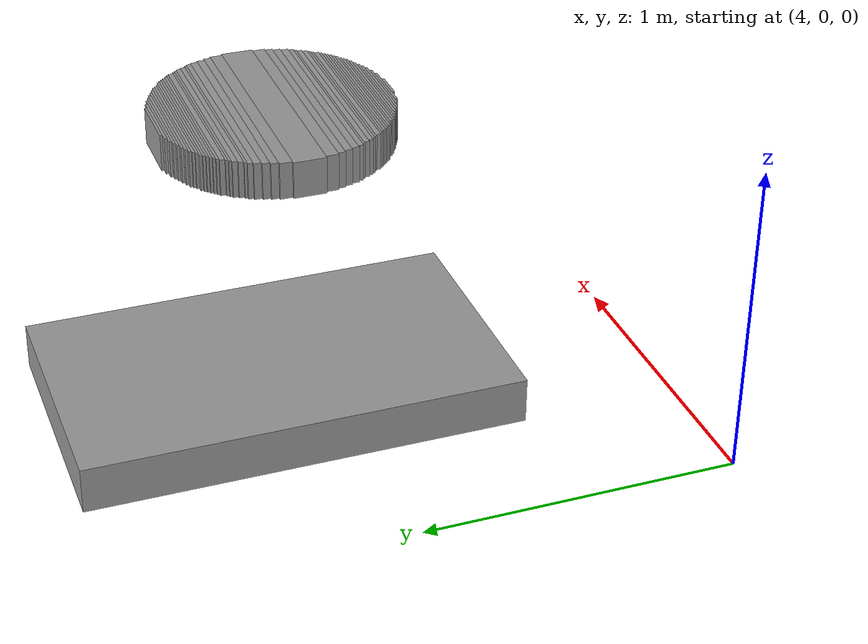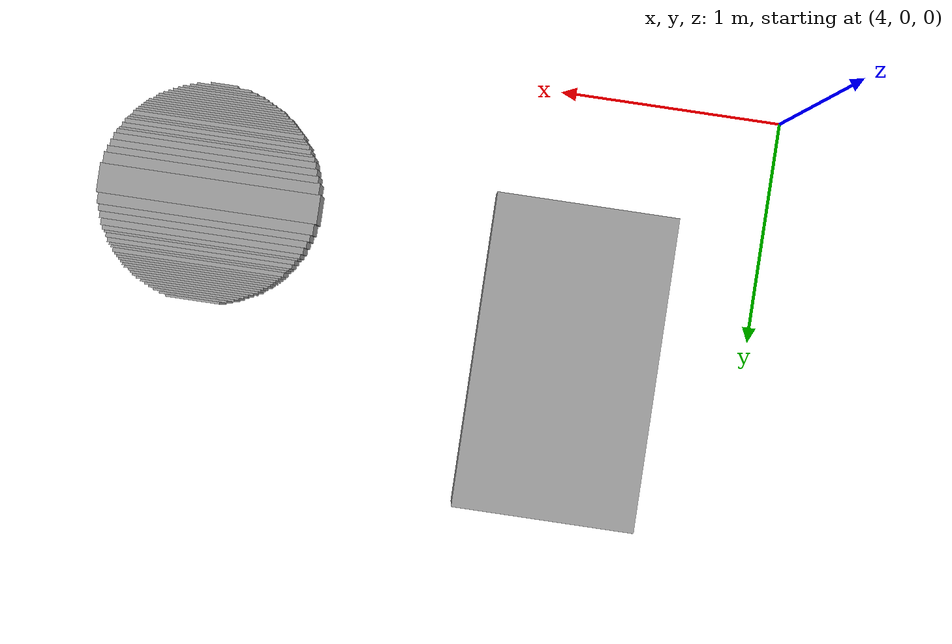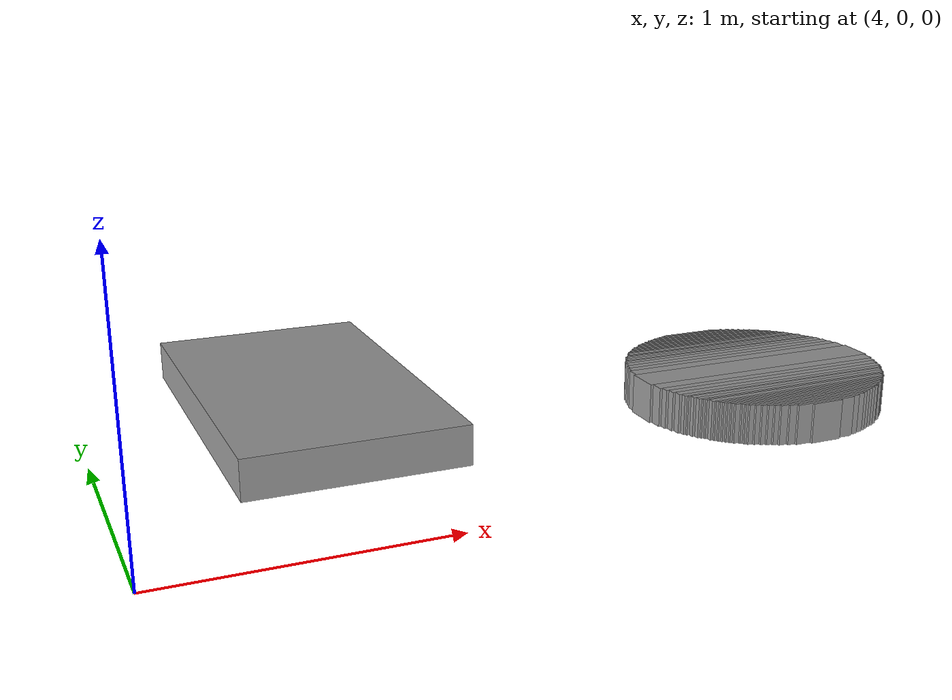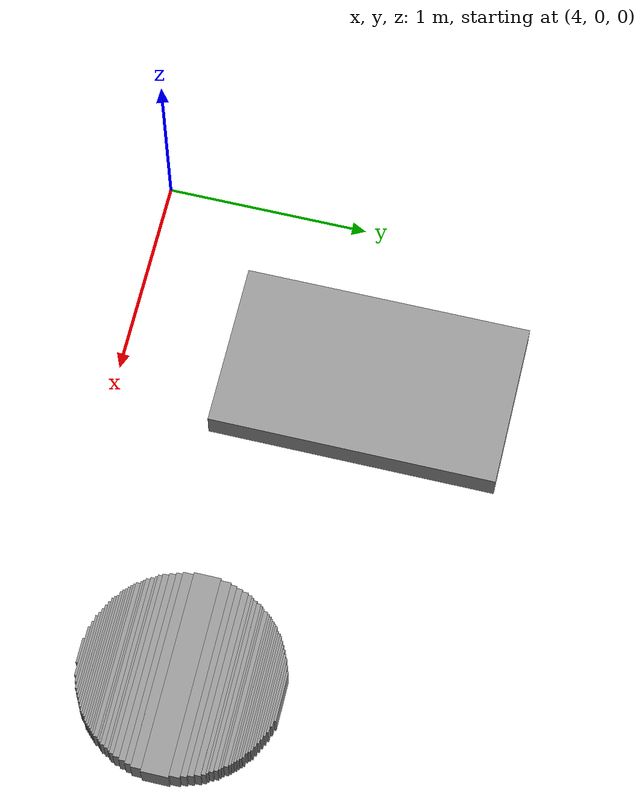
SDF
<sdf version="1.6">
 <model name="new_model">
  <link name="wall1">
   <collision name="wall1_collision">
    <geometry><box><size>0.121250 0.011250 0.150000</size></box></geometry>
    <pose>6.485000 0.220000 0.075000 0 0 0</pose>
   </collision>
   <visual name="Wall_1_Visual">
    <pose>6.485000 0.220000 0.075000 0 0 0</pose>
    <geometry><box><size>0.121250 0.011250 0.150000</size></box></geometry>
    <material>
     <script><uri>file://media/materials/scripts/gazebo.material</uri><name>Gazebo/Grey</name></script>
     <ambient>1 1 1 1</ambient>
    </material>
    <meta><layer>0</layer></meta>
   </visual>
  </link>
  <static>1</static>
  <link name="wall2">
   <collision name="wall2_collision">
    <geometry><box><size>0.241250 0.011250 0.150000</size></box></geometry>
    <pose>6.485000 0.230000 0.075000 0 0 0</pose>
   </collision>
   <visual name="Wall_2_Visual">
    <pose>6.485000 0.230000 0.075000 0 0 0</pose>
    <geometry><box><size>0.241250 0.011250 0.150000</size></box></geometry>
    <material>
     <script><uri>file://media/materials/scripts/gazebo.material</uri><name>Gazebo/Grey</name></script>
     <ambient>1 1 1 1</ambient>
    </material>
    <meta><layer>0</layer></meta>
   </visual>
  </link>
  <static>1</static>
  <link name="wall3">
   <collision name="wall3_collision">
    <geometry><box><size>0.301250 0.011250 0.150000</size></box></geometry>
    <pose>6.485000 0.240000 0.075000 0 0 0</pose>
   </collision>
   <visual name="Wall_3_Visual">
    <pose>6.485000 0.240000 0.075000 0 0 0</pose>
    <geometry><box><size>0.301250 0.011250 0.150000</size></box></geometry>
    <material>
     <script><uri>file://media/materials/scripts/gazebo.material</uri><name>Gazebo/Grey</name></script>
     <ambient>1 1 1 1</ambient>
    </material>
    <meta><layer>0</layer></meta>
   </visual>
  </link>
  <static>1</static>
  <link name="wall4">
   <collision name="wall4_collision">
    <geometry><box><size>0.361250 0.011250 0.150000</size></box></geometry>
    <pose>6.485000 0.250000 0.075000 0 0 0</pose>
   </collision>
   <visual name="Wall_4_Visual">
    <pose>6.485000 0.250000 0.075000 0 0 0</pose>
    <geometry><box><size>0.361250 0.011250 0.150000</size></box></geometry>
    <material>
     <script><uri>file://media/materials/scripts/gazebo.material</uri><name>Gazebo/Grey</name></script>
     <ambient>1 1 1 1</ambient>
    </material>
    <meta><layer>0</layer></meta>
   </visual>
  </link>
  <static>1</static>
  <link name="wall5">
   <collision name="wall5_collision">
    <geometry><box><size>0.401250 0.011250 0.150000</size></box></geometry>
    <pose>6.485000 0.260000 0.075000 0 0 0</pose>
   </collision>
   <visual name="Wall_5_Visual">
    <pose>6.485000 0.260000 0.075000 0 0 0</pose>
    <geometry><box><size>0.401250 0.011250 0.150000</size></box></geometry>
    <material>
     <script><uri>file://media/materials/scripts/gazebo.material</uri><name>Gazebo/Grey</name></script>
     <ambient>1 1 1 1</ambient>
    </material>
    <meta><layer>0</layer></meta>
   </visual>
  </link>
  <static>1</static>
  <link name="wall6">
   <collision name="wall6_collision">
    <geometry><box><size>0.441250 0.011250 0.150000</size></box></geometry>
    <pose>6.485000 0.270000 0.075000 0 0 0</pose>
   </collision>
   <visual name="Wall_6_Visual">
    <pose>6.485000 0.270000 0.075000 0 0 0</pose>
    <geometry><box><size>0.441250 0.011250 0.150000</size></box></geometry>
    <material>
     <script><uri>file://media/materials/scripts/gazebo.material</uri><name>Gazebo/Grey</name></script>
     <ambient>1 1 1 1</ambient>
    </material>
    <meta><layer>0</layer></meta>
   </visual>
  </link>
  <static>1</static>
  <link name="wall7">
   <collision name="wall7_collision">
    <geometry><box><size>0.481250 0.011250 0.150000</size></box></geometry>
    <pose>6.485000 0.280000 0.075000 0 0 0</pose>
   </collision>
   <visual name="Wall_7_Visual">
    <pose>6.485000 0.280000 0.075000 0 0 0</pose>
    <geometry><box><size>0.481250 0.011250 0.150000</size></box></geometry>
    <material>
     <script><uri>file://media/materials/scripts/gazebo.material</uri><name>Gazebo/Grey</name></script>
     <ambient>1 1 1 1</ambient>
    </material>
    <meta><layer>0</layer></meta>
   </visual>
  </link>
  <static>1</static>
  <link name="wall8">
   <collision name="wall8_collision">
    <geometry><box><size>0.521250 0.011250 0.150000</size></box></geometry>
    <pose>6.485000 0.290000 0.075000 0 0 0</pose>
   </collision>
   <visual name="Wall_8_Visual">
    <pose>6.485000 0.290000 0.075000 0 0 0</pose>
    <geometry><box><size>0.521250 0.011250 0.150000</size></box></geometry>
    <material>
     <script><uri>file://media/materials/scripts/gazebo.material</uri><name>Gazebo/Grey</name></script>
     <ambient>1 1 1 1</ambient>
    </material>
    <meta><layer>0</layer></meta>
   </visual>
  </link>
  <static>1</static>
  <link name="wall9">
   <collision name="wall9_collision">
    <geometry><box><size>0.561250 0.011250 0.150000</size></box></geometry>
    <pose>6.485000 0.300000 0.075000 0 0 0</pose>
   </collision>
   <visual name="Wall_9_Visual">
    <pose>6.485000 0.300000 0.075000 0 0 0</pose>
    <geometry><box><size>0.561250 0.011250 0.150000</size></box></geometry>
    <material>
     <script><uri>file://media/materials/scripts/gazebo.material</uri><name>Gazebo/Grey</name></script>
     <ambient>1 1 1 1</ambient>
    </material>
    <meta><layer>0</layer></meta>
   </visual>
  </link>
  <static>1</static>
  <link name="wall10">
   <collision name="wall10_collision">
    <geometry><box><size>0.581250 0.011250 0.150000</size></box></geometry>
    <pose>6.485000 0.310000 0.075000 0 0 0</pose>
   </collision>
   <visual name="Wall_10_Visual">
    <pose>6.485000 0.310000 0.075000 0 0 0</pose>
    <geometry><box><size>0.581250 0.011250 0.150000</size></box></geometry>
    <material>
     <script><uri>file://media/materials/scripts/gazebo.material</uri><name>Gazebo/Grey</name></script>
     <ambient>1 1 1 1</ambient>
    </material>
    <meta><layer>0</layer></meta>
   </visual>
  </link>
  <static>1</static>
  <link name="wall11">
   <collision name="wall11_collision">
    <geometry><box><size>0.601250 0.011250 0.150000</size></box></geometry>
    <pose>6.485000 0.320000 0.075000 0 0 0</pose>
   </collision>
   <visual name="Wall_11_Visual">
    <pose>6.485000 0.320000 0.075000 0 0 0</pose>
    <geometry><box><size>0.601250 0.011250 0.150000</size></box></geometry>
    <material>
     <script><uri>file://media/materials/scripts/gazebo.material</uri><name>Gazebo/Grey</name></script>
     <ambient>1 1 1 1</ambient>
    </material>
    <meta><layer>0</layer></meta>
   </visual>
  </link>
  <static>1</static>
  <link name="wall12">
   <collision name="wall12_collision">
    <geometry><box><size>0.641250 0.011250 0.150000</size></box></geometry>
    <pose>6.485000 0.330000 0.075000 0 0 0</pose>
   </collision>
   <visual name="Wall_12_Visual">
    <pose>6.485000 0.330000 0.075000 0 0 0</pose>
    <geometry><box><size>0.641250 0.011250 0.150000</size></box></geometry>
    <material>
     <script><uri>file://media/materials/scripts/gazebo.material</uri><name>Gazebo/Grey</name></script>
     <ambient>1 1 1 1</ambient>
    </material>
    <meta><layer>0</layer></meta>
   </visual>
  </link>
  <static>1</static>
  <link name="wall13">
   <collision name="wall13_collision">
    <geometry><box><size>0.661250 0.011250 0.150000</size></box></geometry>
    <pose>6.485000 0.340000 0.075000 0 0 0</pose>
   </collision>
   <visual name="Wall_13_Visual">
    <pose>6.485000 0.340000 0.075000 0 0 0</pose>
    <geometry><box><size>0.661250 0.011250 0.150000</size></box></geometry>
    <material>
     <script><uri>file://media/materials/scripts/gazebo.material</uri><name>Gazebo/Grey</name></script>
     <ambient>1 1 1 1</ambient>
    </material>
    <meta><layer>0</layer></meta>
   </visual>
  </link>
  <static>1</static>
  <link name="wall14">
   <collision name="wall14_collision">
    <geometry><box><size>0.681250 0.011250 0.150000</size></box></geometry>
    <pose>6.485000 0.350000 0.075000 0 0 0</pose>
   </collision>
   <visual name="Wall_14_Visual">
    <pose>6.485000 0.350000 0.075000 0 0 0</pose>
    <geometry><box><size>0.681250 0.011250 0.150000</size></box></geometry>
    <material>
     <script><uri>file://media/materials/scripts/gazebo.material</uri><name>Gazebo/Grey</name></script>
     <ambient>1 1 1 1</ambient>
    </material>
    <meta><layer>0</layer></meta>
   </visual>
  </link>
  <static>1</static>
  <link name="wall15">
   <collision name="wall15_collision">
    <geometry><box><size>0.701250 0.011250 0.150000</size></box></geometry>
    <pose>6.485000 0.360000 0.075000 0 0 0</pose>
   </collision>
   <visual name="Wall_15_Visual">
    <pose>6.485000 0.360000 0.075000 0 0 0</pose>
    <geometry><box><size>0.701250 0.011250 0.150000</size></box></geometry>
    <material>
     <script><uri>file://media/materials/scripts/gazebo.material</uri><name>Gazebo/Grey</name></script>
     <ambient>1 1 1 1</ambient>
    </material>
    <meta><layer>0</layer></meta>
   </visual>
  </link>
  <static>1</static>
  <link name="wall16">
   <collision name="wall16_collision">
    <geometry><box><size>0.721250 0.011250 0.150000</size></box></geometry>
    <pose>6.485000 0.370000 0.075000 0 0 0</pose>
   </collision>
   <visual name="Wall_16_Visual">
    <pose>6.485000 0.370000 0.075000 0 0 0</pose>
    <geometry><box><size>0.721250 0.011250 0.150000</size></box></geometry>
    <material>
     <script><uri>file://media/materials/scripts/gazebo.material</uri><name>Gazebo/Grey</name></script>
     <ambient>1 1 1 1</ambient>
    </material>
    <meta><layer>0</layer></meta>
   </visual>
  </link>
  <static>1</static>
  <link name="wall17">
   <collision name="wall17_collision">
    <geometry><box><size>0.741250 0.011250 0.150000</size></box></geometry>
    <pose>6.485000 0.380000 0.075000 0 0 0</pose>
   </collision>
   <visual name="Wall_17_Visual">
    <pose>6.485000 0.380000 0.075000 0 0 0</pose>
    <geometry><box><size>0.741250 0.011250 0.150000</size></box></geometry>
    <material>
     <script><uri>file://media/materials/scripts/gazebo.material</uri><name>Gazebo/Grey</name></script>
     <ambient>1 1 1 1</ambient>
    </material>
    <meta><layer>0</layer></meta>
   </visual>
  </link>
  <static>1</static>
  <link name="wall18">
   <collision name="wall18_collision">
    <geometry><box><size>0.761250 0.021250 0.150000</size></box></geometry>
    <pose>6.485000 0.395000 0.075000 0 0 0</pose>
   </collision>
   <visual name="Wall_18_Visual">
    <pose>6.485000 0.395000 0.075000 0 0 0</pose>
    <geometry><box><size>0.761250 0.021250 0.150000</size></box></geometry>
    <material>
     <script><uri>file://media/materials/scripts/gazebo.material</uri><name>Gazebo/Grey</name></script>
     <ambient>1 1 1 1</ambient>
    </material>
    <meta><layer>0</layer></meta>
   </visual>
  </link>
  <static>1</static>
  <link name="wall19">
   <collision name="wall19_collision">
    <geometry><box><size>0.781250 0.011250 0.150000</size></box></geometry>
    <pose>6.485000 0.410000 0.075000 0 0 0</pose>
   </collision>
   <visual name="Wall_19_Visual">
    <pose>6.485000 0.410000 0.075000 0 0 0</pose>
    <geometry><box><size>0.781250 0.011250 0.150000</size></box></geometry>
    <material>
     <script><uri>file://media/materials/scripts/gazebo.material</uri><name>Gazebo/Grey</name></script>
     <ambient>1 1 1 1</ambient>
    </material>
    <meta><layer>0</layer></meta>
   </visual>
  </link>
  <static>1</static>
  <link name="wall20">
   <collision name="wall20_collision">
    <geometry><box><size>0.801250 0.011250 0.150000</size></box></geometry>
    <pose>6.485000 0.420000 0.075000 0 0 0</pose>
   </collision>
   <visual name="Wall_20_Visual">
    <pose>6.485000 0.420000 0.075000 0 0 0</pose>
    <geometry><box><size>0.801250 0.011250 0.150000</size></box></geometry>
    <material>
     <script><uri>file://media/materials/scripts/gazebo.material</uri><name>Gazebo/Grey</name></script>
     <ambient>1 1 1 1</ambient>
    </material>
    <meta><layer>0</layer></meta>
   </visual>
  </link>
  <static>1</static>
  <link name="wall21">
   <collision name="wall21_collision">
    <geometry><box><size>0.821250 0.021250 0.150000</size></box></geometry>
    <pose>6.485000 0.435000 0.075000 0 0 0</pose>
   </collision>
   <visual name="Wall_21_Visual">
    <pose>6.485000 0.435000 0.075000 0 0 0</pose>
    <geometry><box><size>0.821250 0.021250 0.150000</size></box></geometry>
    <material>
     <script><uri>file://media/materials/scripts/gazebo.material</uri><name>Gazebo/Grey</name></script>
     <ambient>1 1 1 1</ambient>
    </material>
    <meta><layer>0</layer></meta>
   </visual>
  </link>
  <static>1</static>
  <link name="wall22">
   <collision name="wall22_collision">
    <geometry><box><size>0.841250 0.021250 0.150000</size></box></geometry>
    <pose>6.485000 0.455000 0.075000 0 0 0</pose>
   </collision>
   <visual name="Wall_22_Visual">
    <pose>6.485000 0.455000 0.075000 0 0 0</pose>
    <geometry><box><size>0.841250 0.021250 0.150000</size></box></geometry>
    <material>
     <script><uri>file://media/materials/scripts/gazebo.material</uri><name>Gazebo/Grey</name></script>
     <ambient>1 1 1 1</ambient>
    </material>
    <meta><layer>0</layer></meta>
   </visual>
  </link>
  <static>1</static>
  <link name="wall23">
   <collision name="wall23_collision">
    <geometry><box><size>0.861250 0.011250 0.150000</size></box></geometry>
    <pose>6.485000 0.470000 0.075000 0 0 0</pose>
   </collision>
   <visual name="Wall_23_Visual">
    <pose>6.485000 0.470000 0.075000 0 0 0</pose>
    <geometry><box><size>0.861250 0.011250 0.150000</size></box></geometry>
    <material>
     <script><uri>file://media/materials/scripts/gazebo.material</uri><name>Gazebo/Grey</name></script>
     <ambient>1 1 1 1</ambient>
    </material>
    <meta><layer>0</layer></meta>
   </visual>
  </link>
  <static>1</static>
  <link name="wall24">
   <collision name="wall24_collision">
    <geometry><box><size>0.881250 0.021250 0.150000</size></box></geometry>
    <pose>6.485000 0.485000 0.075000 0 0 0</pose>
   </collision>
   <visual name="Wall_24_Visual">
    <pose>6.485000 0.485000 0.075000 0 0 0</pose>
    <geometry><box><size>0.881250 0.021250 0.150000</size></box></geometry>
    <material>
     <script><uri>file://media/materials/scripts/gazebo.material</uri><name>Gazebo/Grey</name></script>
     <ambient>1 1 1 1</ambient>
    </material>
    <meta><layer>0</layer></meta>
   </visual>
  </link>
  <static>1</static>
  <link name="wall25">
   <collision name="wall25_collision">
    <geometry><box><size>0.901250 0.031250 0.150000</size></box></geometry>
    <pose>6.485000 0.510000 0.075000 0 0 0</pose>
   </collision>
   <visual name="Wall_25_Visual">
    <pose>6.485000 0.510000 0.075000 0 0 0</pose>
    <geometry><box><size>0.901250 0.031250 0.150000</size></box></geometry>
    <material>
     <script><uri>file://media/materials/scripts/gazebo.material</uri><name>Gazebo/Grey</name></script>
     <ambient>1 1 1 1</ambient>
    </material>
    <meta><layer>0</layer></meta>
   </visual>
  </link>
  <static>1</static>
  <link name="wall26">
   <collision name="wall26_collision">
    <geometry><box><size>0.811250 1.401250 0.150000</size></box></geometry>
    <pose>4.820000 1.205000 0.075000 0 0 0</pose>
   </collision>
   <visual name="Wall_26_Visual">
    <pose>4.820000 1.205000 0.075000 0 0 0</pose>
    <geometry><box><size>0.811250 1.401250 0.150000</size></box></geometry>
    <material>
     <script><uri>file://media/materials/scripts/gazebo.material</uri><name>Gazebo/Grey</name></script>
     <ambient>1 1 1 1</ambient>
    </material>
    <meta><layer>0</layer></meta>
   </visual>
  </link>
  <static>1</static>
  <link name="wall27">
   <collision name="wall27_collision">
    <geometry><box><size>0.921250 0.031250 0.150000</size></box></geometry>
    <pose>6.485000 0.540000 0.075000 0 0 0</pose>
   </collision>
   <visual name="Wall_27_Visual">
    <pose>6.485000 0.540000 0.075000 0 0 0</pose>
    <geometry><box><size>0.921250 0.031250 0.150000</size></box></geometry>
    <material>
     <script><uri>file://media/materials/scripts/gazebo.material</uri><name>Gazebo/Grey</name></script>
     <ambient>1 1 1 1</ambient>
    </material>
    <meta><layer>0</layer></meta>
   </visual>
  </link>
  <static>1</static>
  <link name="wall28">
   <collision name="wall28_collision">
    <geometry><box><size>0.941250 0.031250 0.150000</size></box></geometry>
    <pose>6.485000 0.570000 0.075000 0 0 0</pose>
   </collision>
   <visual name="Wall_28_Visual">
    <pose>6.485000 0.570000 0.075000 0 0 0</pose>
    <geometry><box><size>0.941250 0.031250 0.150000</size></box></geometry>
    <material>
     <script><uri>file://media/materials/scripts/gazebo.material</uri><name>Gazebo/Grey</name></script>
     <ambient>1 1 1 1</ambient>
    </material>
    <meta><layer>0</layer></meta>
   </visual>
  </link>
  <static>1</static>
  <link name="wall29">
   <collision name="wall29_collision">
    <geometry><box><size>0.961250 0.051250 0.150000</size></box></geometry>
    <pose>6.485000 0.610000 0.075000 0 0 0</pose>
   </collision>
   <visual name="Wall_29_Visual">
    <pose>6.485000 0.610000 0.075000 0 0 0</pose>
    <geometry><box><size>0.961250 0.051250 0.150000</size></box></geometry>
    <material>
     <script><uri>file://media/materials/scripts/gazebo.material</uri><name>Gazebo/Grey</name></script>
     <ambient>1 1 1 1</ambient>
    </material>
    <meta><layer>0</layer></meta>
   </visual>
  </link>
  <static>1</static>
  <link name="wall30">
   <collision name="wall30_collision">
    <geometry><box><size>0.981250 0.131250 0.150000</size></box></geometry>
    <pose>6.485000 0.700000 0.075000 0 0 0</pose>
   </collision>
   <visual name="Wall_30_Visual">
    <pose>6.485000 0.700000 0.075000 0 0 0</pose>
    <geometry><box><size>0.981250 0.131250 0.150000</size></box></geometry>
    <material>
     <script><uri>file://media/materials/scripts/gazebo.material</uri><name>Gazebo/Grey</name></script>
     <ambient>1 1 1 1</ambient>
    </material>
    <meta><layer>0</layer></meta>
   </visual>
  </link>
  <static>1</static>
  <link name="wall31">
   <collision name="wall31_collision">
    <geometry><box><size>0.961250 0.051250 0.150000</size></box></geometry>
    <pose>6.485000 0.790000 0.075000 0 0 0</pose>
   </collision>
   <visual name="Wall_31_Visual">
    <pose>6.485000 0.790000 0.075000 0 0 0</pose>
    <geometry><box><size>0.961250 0.051250 0.150000</size></box></geometry>
    <material>
     <script><uri>file://media/materials/scripts/gazebo.material</uri><name>Gazebo/Grey</name></script>
     <ambient>1 1 1 1</ambient>
    </material>
    <meta><layer>0</layer></meta>
   </visual>
  </link>
  <static>1</static>
  <link name="wall32">
   <collision name="wall32_collision">
    <geometry><box><size>0.941250 0.031250 0.150000</size></box></geometry>
    <pose>6.485000 0.830000 0.075000 0 0 0</pose>
   </collision>
   <visual name="Wall_32_Visual">
    <pose>6.485000 0.830000 0.075000 0 0 0</pose>
    <geometry><box><size>0.941250 0.031250 0.150000</size></box></geometry>
    <material>
     <script><uri>file://media/materials/scripts/gazebo.material</uri><name>Gazebo/Grey</name></script>
     <ambient>1 1 1 1</ambient>
    </material>
    <meta><layer>0</layer></meta>
   </visual>
  </link>
  <static>1</static>
  <link name="wall33">
   <collision name="wall33_collision">
    <geometry><box><size>0.921250 0.031250 0.150000</size></box></geometry>
    <pose>6.485000 0.860000 0.075000 0 0 0</pose>
   </collision>
   <visual name="Wall_33_Visual">
    <pose>6.485000 0.860000 0.075000 0 0 0</pose>
    <geometry><box><size>0.921250 0.031250 0.150000</size></box></geometry>
    <material>
     <script><uri>file://media/materials/scripts/gazebo.material</uri><name>Gazebo/Grey</name></script>
     <ambient>1 1 1 1</ambient>
    </material>
    <meta><layer>0</layer></meta>
   </visual>
  </link>
  <static>1</static>
  <link name="wall34">
   <collision name="wall34_collision">
    <geometry><box><size>0.901250 0.031250 0.150000</size></box></geometry>
    <pose>6.485000 0.890000 0.075000 0 0 0</pose>
   </collision>
   <visual name="Wall_34_Visual">
    <pose>6.485000 0.890000 0.075000 0 0 0</pose>
    <geometry><box><size>0.901250 0.031250 0.150000</size></box></geometry>
    <material>
     <script><uri>file://media/materials/scripts/gazebo.material</uri><name>Gazebo/Grey</name></script>
     <ambient>1 1 1 1</ambient>
    </material>
    <meta><layer>0</layer></meta>
   </visual>
  </link>
  <static>1</static>
  <link name="wall35">
   <collision name="wall35_collision">
    <geometry><box><size>0.881250 0.021250 0.150000</size></box></geometry>
    <pose>6.485000 0.915000 0.075000 0 0 0</pose>
   </collision>
   <visual name="Wall_35_Visual">
    <pose>6.485000 0.915000 0.075000 0 0 0</pose>
    <geometry><box><size>0.881250 0.021250 0.150000</size></box></geometry>
    <material>
     <script><uri>file://media/materials/scripts/gazebo.material</uri><name>Gazebo/Grey</name></script>
     <ambient>1 1 1 1</ambient>
    </material>
    <meta><layer>0</layer></meta>
   </visual>
  </link>
  <static>1</static>
  <link name="wall36">
   <collision name="wall36_collision">
    <geometry><box><size>0.861250 0.011250 0.150000</size></box></geometry>
    <pose>6.485000 0.930000 0.075000 0 0 0</pose>
   </collision>
   <visual name="Wall_36_Visual">
    <pose>6.485000 0.930000 0.075000 0 0 0</pose>
    <geometry><box><size>0.861250 0.011250 0.150000</size></box></geometry>
    <material>
     <script><uri>file://media/materials/scripts/gazebo.material</uri><name>Gazebo/Grey</name></script>
     <ambient>1 1 1 1</ambient>
    </material>
    <meta><layer>0</layer></meta>
   </visual>
  </link>
  <static>1</static>
  <link name="wall37">
   <collision name="wall37_collision">
    <geometry><box><size>0.841250 0.021250 0.150000</size></box></geometry>
    <pose>6.485000 0.945000 0.075000 0 0 0</pose>
   </collision>
   <visual name="Wall_37_Visual">
    <pose>6.485000 0.945000 0.075000 0 0 0</pose>
    <geometry><box><size>0.841250 0.021250 0.150000</size></box></geometry>
    <material>
     <script><uri>file://media/materials/scripts/gazebo.material</uri><name>Gazebo/Grey</name></script>
     <ambient>1 1 1 1</ambient>
    </material>
    <meta><layer>0</layer></meta>
   </visual>
  </link>
  <static>1</static>
  <link name="wall38">
   <collision name="wall38_collision">
    <geometry><box><size>0.821250 0.021250 0.150000</size></box></geometry>
    <pose>6.485000 0.965000 0.075000 0 0 0</pose>
   </collision>
   <visual name="Wall_38_Visual">
    <pose>6.485000 0.965000 0.075000 0 0 0</pose>
    <geometry><box><size>0.821250 0.021250 0.150000</size></box></geometry>
    <material>
     <script><uri>file://media/materials/scripts/gazebo.material</uri><name>Gazebo/Grey</name></script>
     <ambient>1 1 1 1</ambient>
    </material>
    <meta><layer>0</layer></meta>
   </visual>
  </link>
  <static>1</static>
  <link name="wall39">
   <collision name="wall39_collision">
    <geometry><box><size>0.801250 0.011250 0.150000</size></box></geometry>
    <pose>6.485000 0.980000 0.075000 0 0 0</pose>
   </collision>
   <visual name="Wall_39_Visual">
    <pose>6.485000 0.980000 0.075000 0 0 0</pose>
    <geometry><box><size>0.801250 0.011250 0.150000</size></box></geometry>
    <material>
     <script><uri>file://media/materials/scripts/gazebo.material</uri><name>Gazebo/Grey</name></script>
     <ambient>1 1 1 1</ambient>
    </material>
    <meta><layer>0</layer></meta>
   </visual>
  </link>
  <static>1</static>
  <link name="wall40">
   <collision name="wall40_collision">
    <geometry><box><size>0.781250 0.011250 0.150000</size></box></geometry>
    <pose>6.485000 0.990000 0.075000 0 0 0</pose>
   </collision>
   <visual name="Wall_40_Visual">
    <pose>6.485000 0.990000 0.075000 0 0 0</pose>
    <geometry><box><size>0.781250 0.011250 0.150000</size></box></geometry>
    <material>
     <script><uri>file://media/materials/scripts/gazebo.material</uri><name>Gazebo/Grey</name></script>
     <ambient>1 1 1 1</ambient>
    </material>
    <meta><layer>0</layer></meta>
   </visual>
  </link>
  <static>1</static>
  <link name="wall41">
   <collision name="wall41_collision">
    <geometry><box><size>0.761250 0.021250 0.150000</size></box></geometry>
    <pose>6.485000 1.005000 0.075000 0 0 0</pose>
   </collision>
   <visual name="Wall_41_Visual">
    <pose>6.485000 1.005000 0.075000 0 0 0</pose>
    <geometry><box><size>0.761250 0.021250 0.150000</size></box></geometry>
    <material>
     <script><uri>file://media/materials/scripts/gazebo.material</uri><name>Gazebo/Grey</name></script>
     <ambient>1 1 1 1</ambient>
    </material>
    <meta><layer>0</layer></meta>
   </visual>
  </link>
  <static>1</static>
  <link name="wall42">
   <collision name="wall42_collision">
    <geometry><box><size>0.741250 0.011250 0.150000</size></box></geometry>
    <pose>6.485000 1.020000 0.075000 0 0 0</pose>
   </collision>
   <visual name="Wall_42_Visual">
    <pose>6.485000 1.020000 0.075000 0 0 0</pose>
    <geometry><box><size>0.741250 0.011250 0.150000</size></box></geometry>
    <material>
     <script><uri>file://media/materials/scripts/gazebo.material</uri><name>Gazebo/Grey</name></script>
     <ambient>1 1 1 1</ambient>
    </material>
    <meta><layer>0</layer></meta>
   </visual>
  </link>
  <static>1</static>
  <link name="wall43">
   <collision name="wall43_collision">
    <geometry><box><size>0.721250 0.011250 0.150000</size></box></geometry>
    <pose>6.485000 1.030000 0.075000 0 0 0</pose>
   </collision>
   <visual name="Wall_43_Visual">
    <pose>6.485000 1.030000 0.075000 0 0 0</pose>
    <geometry><box><size>0.721250 0.011250 0.150000</size></box></geometry>
    <material>
     <script><uri>file://media/materials/scripts/gazebo.material</uri><name>Gazebo/Grey</name></script>
     <ambient>1 1 1 1</ambient>
    </material>
    <meta><layer>0</layer></meta>
   </visual>
  </link>
  <static>1</static>
  <link name="wall44">
   <collision name="wall44_collision">
    <geometry><box><size>0.701250 0.011250 0.150000</size></box></geometry>
    <pose>6.485000 1.040000 0.075000 0 0 0</pose>
   </collision>
   <visual name="Wall_44_Visual">
    <pose>6.485000 1.040000 0.075000 0 0 0</pose>
    <geometry><box><size>0.701250 0.011250 0.150000</size></box></geometry>
    <material>
     <script><uri>file://media/materials/scripts/gazebo.material</uri><name>Gazebo/Grey</name></script>
     <ambient>1 1 1 1</ambient>
    </material>
    <meta><layer>0</layer></meta>
   </visual>
  </link>
  <static>1</static>
  <link name="wall45">
   <collision name="wall45_collision">
    <geometry><box><size>0.681250 0.011250 0.150000</size></box></geometry>
    <pose>6.485000 1.050000 0.075000 0 0 0</pose>
   </collision>
   <visual name="Wall_45_Visual">
    <pose>6.485000 1.050000 0.075000 0 0 0</pose>
    <geometry><box><size>0.681250 0.011250 0.150000</size></box></geometry>
    <material>
     <script><uri>file://media/materials/scripts/gazebo.material</uri><name>Gazebo/Grey</name></script>
     <ambient>1 1 1 1</ambient>
    </material>
    <meta><layer>0</layer></meta>
   </visual>
  </link>
  <static>1</static>
  <link name="wall46">
   <collision name="wall46_collision">
    <geometry><box><size>0.661250 0.011250 0.150000</size></box></geometry>
    <pose>6.485000 1.060000 0.075000 0 0 0</pose>
   </collision>
   <visual name="Wall_46_Visual">
    <pose>6.485000 1.060000 0.075000 0 0 0</pose>
    <geometry><box><size>0.661250 0.011250 0.150000</size></box></geometry>
    <material>
     <script><uri>file://media/materials/scripts/gazebo.material</uri><name>Gazebo/Grey</name></script>
     <ambient>1 1 1 1</ambient>
    </material>
    <meta><layer>0</layer></meta>
   </visual>
  </link>
  <static>1</static>
  <link name="wall47">
   <collision name="wall47_collision">
    <geometry><box><size>0.641250 0.011250 0.150000</size></box></geometry>
    <pose>6.485000 1.070000 0.075000 0 0 0</pose>
   </collision>
   <visual name="Wall_47_Visual">
    <pose>6.485000 1.070000 0.075000 0 0 0</pose>
    <geometry><box><size>0.641250 0.011250 0.150000</size></box></geometry>
    <material>
     <script><uri>file://media/materials/scripts/gazebo.material</uri><name>Gazebo/Grey</name></script>
     <ambient>1 1 1 1</ambient>
    </material>
    <meta><layer>0</layer></meta>
   </visual>
  </link>
  <static>1</static>
  <link name="wall48">
   <collision name="wall48_collision">
    <geometry><box><size>0.601250 0.011250 0.150000</size></box></geometry>
    <pose>6.485000 1.080000 0.075000 0 0 0</pose>
   </collision>
   <visual name="Wall_48_Visual">
    <pose>6.485000 1.080000 0.075000 0 0 0</pose>
    <geometry><box><size>0.601250 0.011250 0.150000</size></box></geometry>
    <material>
     <script><uri>file://media/materials/scripts/gazebo.material</uri><name>Gazebo/Grey</name></script>
     <ambient>1 1 1 1</ambient>
    </material>
    <meta><layer>0</layer></meta>
   </visual>
  </link>
  <static>1</static>
  <link name="wall49">
   <collision name="wall49_collision">
    <geometry><box><size>0.581250 0.011250 0.150000</size></box></geometry>
    <pose>6.485000 1.090000 0.075000 0 0 0</pose>
   </collision>
   <visual name="Wall_49_Visual">
    <pose>6.485000 1.090000 0.075000 0 0 0</pose>
    <geometry><box><size>0.581250 0.011250 0.150000</size></box></geometry>
    <material>
     <script><uri>file://media/materials/scripts/gazebo.material</uri><name>Gazebo/Grey</name></script>
     <ambient>1 1 1 1</ambient>
    </material>
    <meta><layer>0</layer></meta>
   </visual>
  </link>
  <static>1</static>
  <link name="wall50">
   <collision name="wall50_collision">
    <geometry><box><size>0.561250 0.011250 0.150000</size></box></geometry>
    <pose>6.485000 1.100000 0.075000 0 0 0</pose>
   </collision>
   <visual name="Wall_50_Visual">
    <pose>6.485000 1.100000 0.075000 0 0 0</pose>
    <geometry><box><size>0.561250 0.011250 0.150000</size></box></geometry>
    <material>
     <script><uri>file://media/materials/scripts/gazebo.material</uri><name>Gazebo/Grey</name></script>
     <ambient>1 1 1 1</ambient>
    </material>
    <meta><layer>0</layer></meta>
   </visual>
  </link>
  <static>1</static>
  <link name="wall51">
   <collision name="wall51_collision">
    <geometry><box><size>0.521250 0.011250 0.150000</size></box></geometry>
    <pose>6.485000 1.110000 0.075000 0 0 0</pose>
   </collision>
   <visual name="Wall_51_Visual">
    <pose>6.485000 1.110000 0.075000 0 0 0</pose>
    <geometry><box><size>0.521250 0.011250 0.150000</size></box></geometry>
    <material>
     <script><uri>file://media/materials/scripts/gazebo.material</uri><name>Gazebo/Grey</name></script>
     <ambient>1 1 1 1</ambient>
    </material>
    <meta><layer>0</layer></meta>
   </visual>
  </link>
  <static>1</static>
  <link name="wall52">
   <collision name="wall52_collision">
    <geometry><box><size>0.481250 0.011250 0.150000</size></box></geometry>
    <pose>6.485000 1.120000 0.075000 0 0 0</pose>
   </collision>
   <visual name="Wall_52_Visual">
    <pose>6.485000 1.120000 0.075000 0 0 0</pose>
    <geometry><box><size>0.481250 0.011250 0.150000</size></box></geometry>
    <material>
     <script><uri>file://media/materials/scripts/gazebo.material</uri><name>Gazebo/Grey</name></script>
     <ambient>1 1 1 1</ambient>
    </material>
    <meta><layer>0</layer></meta>
   </visual>
  </link>
  <static>1</static>
  <link name="wall53">
   <collision name="wall53_collision">
    <geometry><box><size>0.441250 0.011250 0.150000</size></box></geometry>
    <pose>6.485000 1.130000 0.075000 0 0 0</pose>
   </collision>
   <visual name="Wall_53_Visual">
    <pose>6.485000 1.130000 0.075000 0 0 0</pose>
    <geometry><box><size>0.441250 0.011250 0.150000</size></box></geometry>
    <material>
     <script><uri>file://media/materials/scripts/gazebo.material</uri><name>Gazebo/Grey</name></script>
     <ambient>1 1 1 1</ambient>
    </material>
    <meta><layer>0</layer></meta>
   </visual>
  </link>
  <static>1</static>
  <link name="wall54">
   <collision name="wall54_collision">
    <geometry><box><size>0.401250 0.011250 0.150000</size></box></geometry>
    <pose>6.485000 1.140000 0.075000 0 0 0</pose>
   </collision>
   <visual name="Wall_54_Visual">
    <pose>6.485000 1.140000 0.075000 0 0 0</pose>
    <geometry><box><size>0.401250 0.011250 0.150000</size></box></geometry>
    <material>
     <script><uri>file://media/materials/scripts/gazebo.material</uri><name>Gazebo/Grey</name></script>
     <ambient>1 1 1 1</ambient>
    </material>
    <meta><layer>0</layer></meta>
   </visual>
  </link>
  <static>1</static>
  <link name="wall55">
   <collision name="wall55_collision">
    <geometry><box><size>0.361250 0.011250 0.150000</size></box></geometry>
    <pose>6.485000 1.150000 0.075000 0 0 0</pose>
   </collision>
   <visual name="Wall_55_Visual">
    <pose>6.485000 1.150000 0.075000 0 0 0</pose>
    <geometry><box><size>0.361250 0.011250 0.150000</size></box></geometry>
    <material>
     <script><uri>file://media/materials/scripts/gazebo.material</uri><name>Gazebo/Grey</name></script>
     <ambient>1 1 1 1</ambient>
    </material>
    <meta><layer>0</layer></meta>
   </visual>
  </link>
  <static>1</static>
  <link name="wall56">
   <collision name="wall56_collision">
    <geometry><box><size>0.301250 0.011250 0.150000</size></box></geometry>
    <pose>6.485000 1.160000 0.075000 0 0 0</pose>
   </collision>
   <visual name="Wall_56_Visual">
    <pose>6.485000 1.160000 0.075000 0 0 0</pose>
    <geometry><box><size>0.301250 0.011250 0.150000</size></box></geometry>
    <material>
     <script><uri>file://media/materials/scripts/gazebo.material</uri><name>Gazebo/Grey</name></script>
     <ambient>1 1 1 1</ambient>
    </material>
    <meta><layer>0</layer></meta>
   </visual>
  </link>
  <static>1</static>
  <link name="wall57">
   <collision name="wall57_collision">
    <geometry><box><size>0.241250 0.011250 0.150000</size></box></geometry>
    <pose>6.485000 1.170000 0.075000 0 0 0</pose>
   </collision>
   <visual name="Wall_57_Visual">
    <pose>6.485000 1.170000 0.075000 0 0 0</pose>
    <geometry><box><size>0.241250 0.011250 0.150000</size></box></geometry>
    <material>
     <script><uri>file://media/materials/scripts/gazebo.material</uri><name>Gazebo/Grey</name></script>
     <ambient>1 1 1 1</ambient>
    </material>
    <meta><layer>0</layer></meta>
   </visual>
  </link>
  <static>1</static>
  <static>1</static>
  <static>1</static>
  <static>1</static>
  <static>1</static>
  <static>1</static>
  <static>1</static>
  <static>1</static>
  <static>1</static>
  <static>1</static>
  <static>1</static>
  <static>1</static>
  <static>1</static>
  <static>1</static>
  <static>1</static>
  <static>1</static>
  <static>1</static>
  <static>1</static>
  <static>1</static>
  <static>1</static>
  <static>1</static>
  <static>1</static>
  <static>1</static>
  <static>1</static>
  <static>1</static>
  <static>1</static>
  <static>1</static>
  <static>1</static>
  <static>1</static>
  <static>1</static>
  <static>1</static>
  <static>1</static>
  <static>1</static>
  <static>1</static>
  <static>1</static>
  <static>1</static>
  <static>1</static>
  <static>1</static>
  <static>1</static>
  <static>1</static>
  <static>1</static>
  <static>1</static>
  <static>1</static>
  <static>1</static>
  <static>1</static>
  <static>1</static>
  <static>1</static>
  <static>1</static>
  <static>1</static>
  <static>1</static>
  <static>1</static>
  <static>1</static>
  <static>1</static>
  <static>1</static>
  <static>1</static>
  <static>1</static>
  <static>1</static>
  <static>1</static>
  <static>1</static>
  <static>1</static>
  <static>1</static>
  <static>1</static>
  <static>1</static>
  <static>1</static>
  <static>1</static>
  <static>1</static>
  <static>1</static>
  <static>1</static>
  <static>1</static>
  <static>1</static>
  <static>1</static>
  <static>1</static>
  <static>1</static>
  <static>1</static>
  <static>1</static>
  <static>1</static>
  <static>1</static>
  <static>1</static>
  <static>1</static>
  <static>1</static>
  <static>1</static>
  <static>1</static>
  <static>1</static>
  <static>1</static>
  <static>1</static>
  <static>1</static>
  <static>1</static>
  <static>1</static>
  <static>1</static>
  <static>1</static>
  <static>1</static>
  <static>1</static>
  <static>1</static>
  <static>1</static>
  <static>1</static>
  <static>1</static>
  <static>1</static>
  <static>1</static>
  <static>1</static>
  <static>1</static>
  <static>1</static>
  <static>1</static>
  <static>1</static>
  <static>1</static>
  <static>1</static>
  <static>1</static>
  <static>1</static>
  <static>1</static>
  <static>1</static>
  <static>1</static>
  <static>1</static>
  <static>1</static>
  <static>1</static>
  <static>1</static>
  <static>1</static>
 </model>
</sdf>
